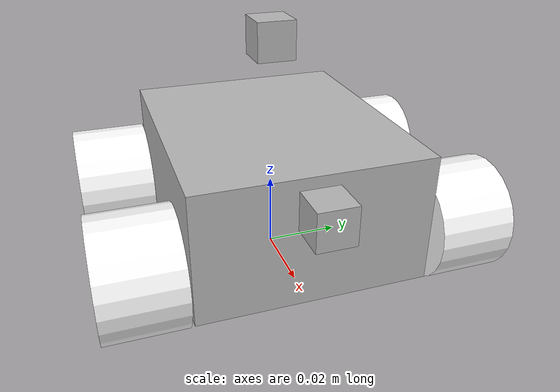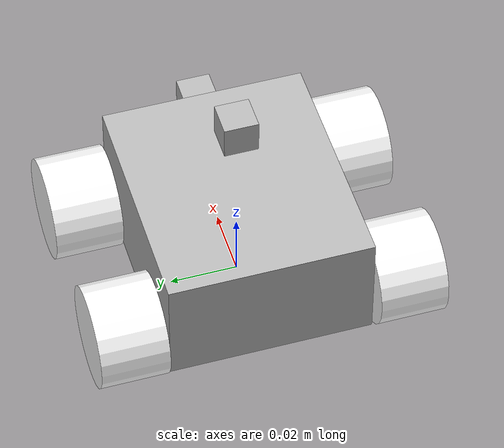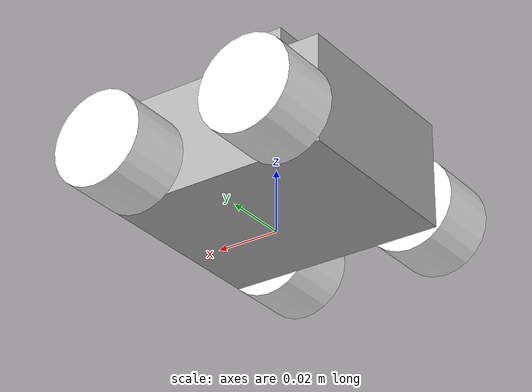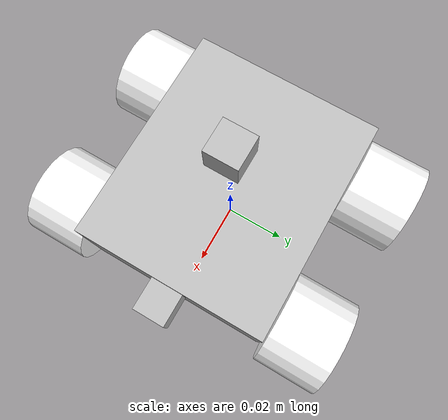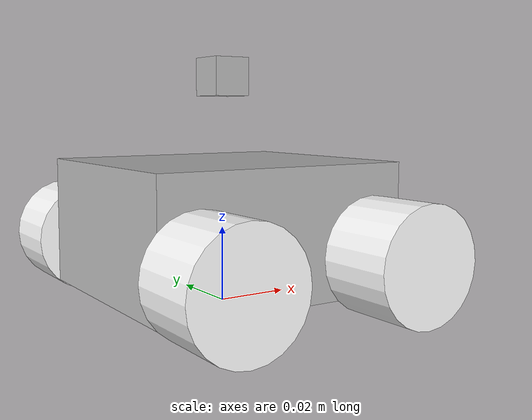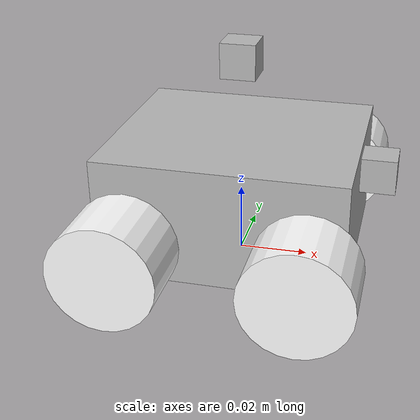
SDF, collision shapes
<?xml version='1.0'?>
<sdf version='1.4'>
    <model name='b_rover'>

    <static>false</static>

        <link name='chassis'>
            <pose>0 0 .021 0 0 0</pose>

            <collision name='collision'>
                <geometry>
                    <box>
                    <size>.07 .06 .034</size>
                    </box>
                </geometry>
            </collision>

            <visual name="visual">
            <pose>0 0 -0.015 0 0 1.5707</pose>
              <geometry>
                <mesh>
                    <uri>model://b_rover/meshes/chassis.stl</uri>
                    <scale>0.001 0.001 0.001</scale>
                </mesh>
                </geometry>
            </visual>
        </link>

      <link name="front_left_wheel">
        <pose>-0.025 0.041 0.015 0 1.5707 1.5707</pose>
        <collision name="collision">
          <geometry>
            <cylinder>
              <radius>.015</radius>
              <length>.02</length>
            </cylinder>
          </geometry>
        </collision>

        <visual name="visual">
        <pose>0.0267 -0.0083 -0.034  0 1.5707 1.5707</pose>
          <geometry>
            <mesh>
                  <uri>model://b_rover/meshes/master_wheel.stl</uri>
                  <scale>0.001 0.001 0.001</scale>
                </mesh>
          </geometry>
          <material>
            <ambient>.2 .2 .2 1</ambient>
            <diffuse>1 1 1 1</diffuse>
            <specular>0.1 0.1 0.1 1</specular>
            <emissive>0 0 0 0</emissive>
          </material>
        </visual>
      </link>

      <link name="front_right_wheel">
        <pose>-0.025 -0.041 0.015 0 1.5707 1.5707</pose>
        <collision name="collision">
          <geometry>
            <cylinder>
              <radius>.015</radius>
              <length>.02</length>
            </cylinder>
          </geometry>
        </collision>
         <visual name="visual">
        <pose>0.0268 0.008 0.034 0 -1.5707 1.5707</pose>
          <geometry>
            <mesh>
                  <uri>model://b_rover/meshes/master_wheel.stl</uri>
                  <scale>0.001 0.001 0.001</scale>
                </mesh>
          </geometry>
          <material>
            <ambient>.2 .2 .2 1</ambient>
            <diffuse>1 1 1 1</diffuse>
            <specular>0.1 0.1 0.1 1</specular>
            <emissive>0 0 0 0</emissive>
          </material>
        </visual>
      </link>

      <link name="back_left_wheel">
        <pose>0.025 0.041 0.015 0 1.5707 1.5707</pose>
        <collision name="collision">
          <geometry>
            <cylinder>
              <radius>.015</radius>
              <length>.02</length>
            </cylinder>
          </geometry>
        </collision>
        <visual name="visual">
        <pose>0.0268 -0.008 -0.034  0 1.5707 1.5707</pose>
          <geometry>
            <mesh>
                  <uri>model://b_rover/meshes/master_wheel.stl</uri>
                  <scale>0.001 0.001 0.001</scale>
                </mesh>
          </geometry>
          <material>
            <ambient>.2 .2 .2 1</ambient>
            <diffuse>1 1 1 1</diffuse>
            <specular>0.1 0.1 0.1 1</specular>
            <emissive>0 0 0 0</emissive>
          </material>
        </visual>
      </link>

      <link name="back_right_wheel">
        <pose>0.025 -0.041 0.015 0 1.5707 1.5707</pose>
        <collision name="collision">
          <geometry>
            <cylinder>
              <radius>.015</radius>
              <length>.02</length>
            </cylinder>
          </geometry>
        </collision>
        <visual name="visual">
        <pose>0.0268 0.008 0.034 0 -1.5707 1.5707</pose>
          <geometry>
            <mesh>
                  <uri>model://b_rover/meshes/master_wheel.stl</uri>
                  <scale>0.001 0.001 0.001</scale>
                </mesh>
          </geometry>
          <material>
            <ambient>.2 .2 .2 1</ambient>
            <diffuse>1 1 1 1</diffuse>
            <specular>0.1 0.1 0.1 1</specular>
            <emissive>0 0 0 0</emissive>
          </material>
        </visual>
      </link>

      <!-- Add the Sonar -->

      <link name="sonar_link">
         <pose>0.04 0 0.03 0 0 0</pose>
         <visual name="visual">
           <geometry>
             <box>
               <size>0.01 0.01 0.01</size>
             </box>
           </geometry>
         </visual>
         <collision name="collision">
           <geometry>
             <box>
               <size>0.01 0.01 0.01</size>
             </box>
           </geometry>
         </collision>

          <sensor type="ray" name="SonarSensor">
            <pose>0 0 0 0 0 0</pose>
            <visualize>true</visualize>
            <update_rate>10</update_rate>
            <ray>
              <scan>
              <!-- Range for HC SR04 is 30 Deg -->
                  <horizontal>
                    <samples>30</samples>
                    <resolution>1</resolution>
                    <min_angle>-0.13</min_angle>
                    <max_angle>0.13</max_angle>
                  </horizontal>
                  <!-- Reduce the simulation latency -->
              </scan>
              <range>
                  <min>0.02</min>
                  <max>4</max>
                  <resolution>0.02</resolution>
              </range>
            </ray>
            <always_on>1</always_on>
            <update_rate>10</update_rate>
            <visualize>true</visualize>

            <plugin filename="libgazebo_ros_ray_sensor.so" name="gazebo_ros_range">
              <gaussianNoise>0.005</gaussianNoise>
              <radiation>ULTRASONIC</radiation>
              <ros>
               <namespace>/b_rover</namespace>
               <argument>--ros-args --remap ~/out:=scan</argument>
             </ros>
             <output_type>sensor_msgs/LaserScan</output_type>
            </plugin>
        </sensor>
       </link>

       <!-- Add the Omni Directional Camera -->
          <!-- Camera -->
        <link name="camera_link">
        <pose>0 0 0.06 0 0 0</pose>
         <visual name="visual">
           <geometry>
             <box>
               <size>0.01 0.01 0.01</size>
             </box>
           </geometry>
         </visual>
         <collision name="collision">
           <geometry>
             <box>
               <size>0.01 0.01 0.01</size>
             </box>
           </geometry>
         </collision>

          <sensor type="camera" name="camera_link">
            <update_rate>30.0</update_rate>
            <camera name="head">
              <horizontal_fov>1.37</horizontal_fov>
              <image>
                <width>800</width>
                <height>800</height>
                <format>R8G8B8</format>
              </image>
              <clip>
                <near>0.02</near>
                <far>300</far>
              </clip>
              <noise>
                <type>gaussian</type>
                <mean>0.0</mean>
                <stddev>0.007</stddev>
              </noise>
            </camera>
            <plugin name="camera_controller" filename="libgazebo_ros_camera.so">
              <alwaysOn>true</alwaysOn>
              <updateRate>30</updateRate>
              <cameraName>/b_rover/camera</cameraName>
              <imageTopicName>image_raw</imageTopicName>
              <cameraInfoTopicName>camera_info</cameraInfoTopicName>
              <frameName>camera_link</frameName>
              <hackBaseline>0.07</hackBaseline>
              <distortionK1>0.0</distortionK1>
              <distortionK2>0.0</distortionK2>
              <distortionK3>0.0</distortionK3>
              <distortionT1>0.0</distortionT1>
              <distortionT2>0.0</distortionT2>
            </plugin>
         </sensor>
        </link>
       <!-- joints -->
        <joint name="camera_joint" type="fixed">
          <parent>chassis</parent>
          <child>camera_link</child>
        </joint>

       <joint type="fixed" name="sonar_joint">
         <child>sonar_link</child>
         <parent>chassis</parent>
       </joint>

      <joint type="revolute" name="fl_wheel_hinge">
        <pose>0 0 -0.011 0 0 0</pose>
        <child>front_left_wheel</child>
        <parent>chassis</parent>
        <axis>
          <xyz>0 1 0</xyz>
        </axis>
      </joint>

      <joint type="revolute" name="fr_wheel_hinge">
        <pose>0 0 0.011 0 0 0</pose>
        <child>front_right_wheel</child>
        <parent>chassis</parent>
        <axis>
          <xyz>0 1 0</xyz>
        </axis>
      </joint>

      <joint type="revolute" name="bl_wheel_hinge">
        <pose>0 0 -0.011 0 0 0</pose>
        <child>back_left_wheel</child>
        <parent>chassis</parent>
        <axis>
          <xyz>0 1 0</xyz>
        </axis>
      </joint>

      <joint type="revolute" name="br_wheel_hinge">
        <pose>0 0 0.011 0 0 0</pose>
        <child>back_right_wheel</child>
        <parent>chassis</parent>
        <axis>
          <xyz>0 1 0</xyz>
        </axis>
      </joint>

     <!-- Controls the differential drive robot -->
       <plugin name='diff_drive' filename='libgazebo_ros_diff_drive.so'>
         <ros>
           <namespace>/b_rover</namespace>
           <remapping>cmd_vel:=cmd_vel</remapping>
           <remapping>odom:=odom</remapping>
         </ros>

         <left_joint>fl_wheel_hinge</left_joint>
         <right_joint>fr_wheel_hinge</right_joint>
         <wheel_separation>0.06</wheel_separation>
         <wheel_diameter>0.03</wheel_diameter>
         <max_wheel_torque>0.25</max_wheel_torque>
         <max_wheel_acceleration>0.02</max_wheel_acceleration>
         <publish_odom>true</publish_odom>
         <publish_odom_tf>true</publish_odom_tf>
         <publish_wheel_tf>true</publish_wheel_tf>

         <odometry_frame>odom</odometry_frame>
         <robot_base_frame>chassis</robot_base_frame>
       </plugin>

    </model>
</sdf>
